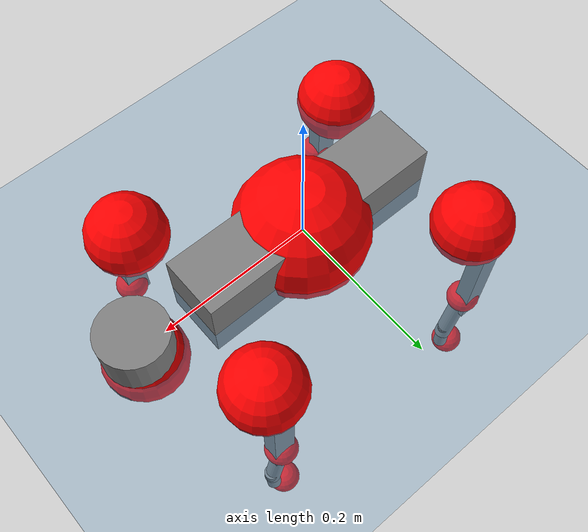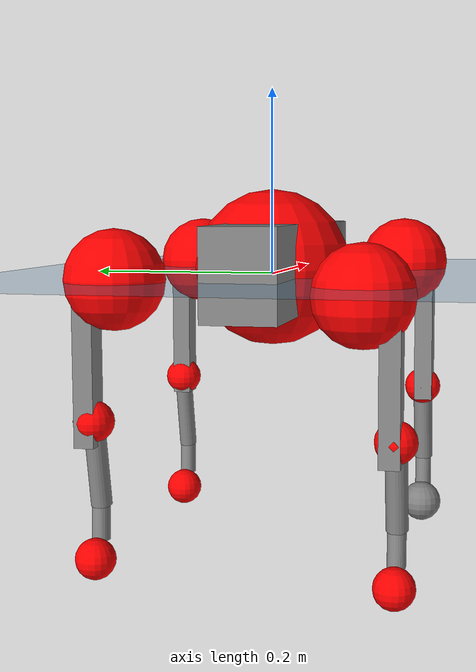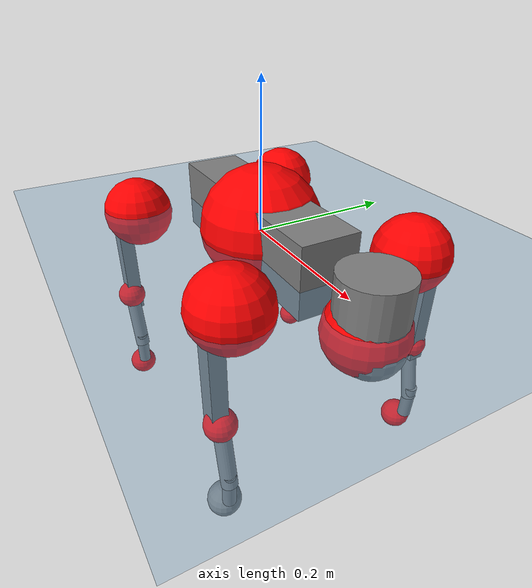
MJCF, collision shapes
<mujoco model="go2">
  <compiler angle="radian" assetdir="assets" balanceinertia="true" inertiafromgeom="false"/>

  <option timestep="0.005" density="1.2" viscosity="2e-05"/>

  <size nkey="1"/>

  <visual>
    <quality shadowsize="8192"/>
    <map shadowclip="0.5"/>
  </visual>

  <default>
    <default class="/">
      <geom contype="0" conaffinity="0" group="1" solref="-1000 -80"/>
      <site size="0.01 0.005 0.005" group="5"/>
      <general forcelimited="true" biastype="affine" gainprm="20" biasprm="0 -20 -0.5"/>
      <default class="go2">
        <joint armature="0.01" damping="0.01" frictionloss="0.2"/>
        <geom condim="1" margin="0.001"/>
        <default class="visual">
          <geom type="mesh" group="2"/>
        </default>
        <default class="collision">
          <geom group="3"/>
          <default class="foot">
            <geom size="0.022 0 0" condim="6" priority="1" friction="0.8 0.02 0.01" solimp="0.015 1 0.022"/>
          </default>
        </default>
        <default class="reward_collision_sphere">
          <geom group="5" rgba="1 0 0 1"/>
        </default>
      </default>
    </default>
  </default>

  <asset>
    <texture type="skybox" colorspace="auto" name="//unnamed_texture_0" builtin="gradient" rgb1="0.95 0.95 0.95" rgb2="0.95 0.95 0.95" width="100" height="600"/>
    <texture type="2d" colorspace="auto" name="texplane" builtin="checker" rgb1="0.345 0.575 0.748" rgb2="0.345 0.575 0.748" markrgb="1 1 1" width="512" height="512"/>
    <material name="MatPlane" class="/" texture="texplane" texuniform="true" texrepeat="2 2" specular="0.9"/>
    <material name="metal" class="/" rgba="0.9 0.95 0.95 1"/>
    <material name="black" class="/" rgba="0 0 0 1"/>
    <material name="white" class="/"/>
    <material name="gray" class="/" rgba="0.671705 0.692426 0.77427 1"/>
    <mesh name="base_0" class="/" file="base_0.obj"/>
    <mesh name="base_1" class="/" file="base_1.obj"/>
    <mesh name="base_2" class="/" file="base_2.obj"/>
    <mesh name="base_3" class="/" file="base_3.obj"/>
    <mesh name="base_4" class="/" file="base_4.obj"/>
    <mesh name="hip_0" class="/" file="hip_0.obj"/>
    <mesh name="hip_1" class="/" file="hip_1.obj"/>
    <mesh name="thigh_0" class="/" file="thigh_0.obj"/>
    <mesh name="thigh_1" class="/" file="thigh_1.obj"/>
    <mesh name="thigh_mirror_0" class="/" file="thigh_mirror_0.obj"/>
    <mesh name="thigh_mirror_1" class="/" file="thigh_mirror_1.obj"/>
    <mesh name="calf_0" class="/" file="calf_0.obj"/>
    <mesh name="calf_1" class="/" file="calf_1.obj"/>
    <mesh name="calf_mirror_0" class="/" file="calf_mirror_0.obj"/>
    <mesh name="calf_mirror_1" class="/" file="calf_mirror_1.obj"/>
    <mesh name="foot" class="/" file="foot.obj"/>
  </asset>

  <worldbody>
    <geom name="floor" class="/" size="100 100 0.125" type="plane" group="0" material="MatPlane"/>
    <light name="toplight_shadow" class="/" pos="0 0 5" dir="0.0990148 0.0990148 -0.990148" type="directional" ambient="0.04 0.04 0.04" diffuse="0.55 0.55 0.55" specular="0.12 0.12 0.12"/>
    <light name="toplight_fill" class="/" pos="0 0 5" dir="0.0990148 0.0990148 -0.990148" type="directional" castshadow="false" ambient="0.04 0.04 0.04" diffuse="0.3 0.3 0.3" specular="0.08 0.08 0.08"/>
    <body name="trunk" childclass="go2" pos="0.00226285 -0.000153597 0.00712633" quat="0.999995 -0.000477487 -0.00293357 0.000786864">
      <inertial pos="0.0202377 -0.00439335 -0.00405876" quat="-0.0156112 0.717213 0.022275 0.696323" mass="3.94645" diaginertia="0.0348373 0.111532 0.00298008"/>
      <joint name="//unnamed_joint_0" type="free" armature="0" damping="0" frictionloss="0"/>
      <geom name="//unnamed_geom_1" class="visual" material="black" mesh="base_0"/>
      <geom name="//unnamed_geom_2" class="visual" material="black" mesh="base_1"/>
      <geom name="//unnamed_geom_3" class="visual" material="black" mesh="base_2"/>
      <geom name="//unnamed_geom_4" class="visual" material="white" mesh="base_3"/>
      <geom name="//unnamed_geom_5" class="visual" material="gray" mesh="base_4"/>
      <geom name="trunk_1" class="collision" size="0.159273 0.0395853 0.0482644" type="box"/>
      <geom name="trunk_2" class="collision" size="0.0423372 0.0381035" pos="0.233756 0 0.00667389" type="cylinder"/>
      <geom name="trunk_3" class="collision" size="0.039797" pos="0.240318 0 -0.0400433"/>
      <geom name="//unnamed_geom_9" class="reward_collision_sphere" size="0.0846744"/>
      <geom name="//unnamed_geom_10" class="reward_collision_sphere" size="0.0508046" pos="0.229655 0 -0.0300325"/>
      <site name="imu" pos="-0.0105905 -0.00800501 0.0476053" size="0.00846744"/>
      <camera name="track" pos="0 -2.10529 0" quat="0.707107 0.707107 0 0" mode="trackcom"/>
      <camera name="ego_camera" pos="0.255902 0 0.0300325" quat="-0.5 -0.5 0.5 0.5"/>
      <body name="FL_hip" pos="0.158809 0.0501796 -0.00131029" quat="1 -0.00015313 -0.000641566 0.00058451">
        <inertial pos="0.00121134 0.00347167 0.00696929" quat="0.517164 0.512061 0.492667 0.47709" mass="0.422362" diaginertia="0.000320303 0.000771062 6.45105e-05"/>
        <joint name="FL_hip_joint" pos="0 0 0" axis="0.999604 0.00737228 -0.027142" stiffness="0.0179665" range="-1.04588 1.02587" armature="0.00857353" damping="0.0241875" frictionloss="0.160682"/>
        <geom name="//unnamed_geom_11" class="visual" material="metal" mesh="hip_0"/>
        <geom name="//unnamed_geom_12" class="visual" material="gray" mesh="hip_1"/>
        <geom name="//unnamed_geom_13" class="collision" size="0.0389502 0.0169349" pos="0 0.0842117 0" quat="0.707107 0.707107 0 0" type="cylinder"/>
        <geom name="//unnamed_geom_14" class="reward_collision_sphere" size="0.0508046" pos="0 0.0736852 0"/>
        <body name="FL_thigh" pos="0.00424652 0.100594 -0.0051742" quat="1 -7.55612e-05 0.00017939 8.10815e-05">
          <inertial pos="-0.00236489 -0.0227448 -0.0235896" quat="0.830256 0.0833653 -0.0148904 0.550912" mass="0.760789" diaginertia="0.00240772 0.00803306 0.000130295"/>
          <joint name="FL_thigh_joint" pos="0 0 0" axis="0.00531292 0.999986 -0.000844627" stiffness="0.0101412" range="-1.54417 3.47405" armature="0.00966414" damping="0" frictionloss="0.169937"/>
          <geom name="//unnamed_geom_15" class="visual" material="metal" mesh="thigh_0"/>
          <geom name="//unnamed_geom_16" class="visual" material="gray" mesh="thigh_1"/>
          <geom name="//unnamed_geom_17" class="collision" size="0.0901782 0.0103726 0.0143946" pos="0 0 -0.0710769" quat="0.707107 0 0.707107 0" type="box"/>
          <body name="FL_calf" pos="-0.0016462 0.000902046 -0.142478" quat="1 0.000211751 -1.40199e-05 -0.000213436">
            <inertial pos="0.0133785 0.00583637 -0.0956302" quat="0.708644 -0.000528118 0.0031007 0.705559" mass="0.144244" diaginertia="0.000583239 0.00190862 6.91557e-06"/>
            <joint name="FL_calf_joint" pos="0 0 0" axis="-0.000376674 1 0.000207753" stiffness="0.0108043" range="-2.56275 -0.869574" armature="0.00800062" damping="0" frictionloss="0.105785"/>
            <geom name="//unnamed_geom_18" class="visual" material="gray" mesh="calf_0"/>
            <geom name="//unnamed_geom_19" class="visual" material="black" mesh="calf_1"/>
            <geom name="FL_calf0" class="collision" size="0.0101609 0.0508046" pos="0.00656158 0 -0.0400433" quat="0.994493 0 -0.104807 0" type="cylinder"/>
            <geom name="//unnamed_geom_21" class="collision" size="0.00931418 0.0275192" pos="0.0164039 0 -0.0987736" quat="0.999688 0 0.0249974 0" type="cylinder"/>
            <geom name="//unnamed_geom_22" class="visual" pos="0 0 -0.142154" quat="1 0 0 0" material="black" mesh="foot"/>
            <geom name="FL_foot" class="foot" size="0.0197097" pos="-0.00164039 0 -0.142154"/>
            <geom name="//unnamed_geom_24" class="reward_collision_sphere" size="0.0211686"/>
            <geom name="//unnamed_geom_25" class="reward_collision_sphere" size="0.0211686" pos="-0.00164039 0 -0.142154"/>
            <site name="FL_foot" class="foot" pos="-0.00164039 0 -0.142154" size="0.00846744"/>
          </body>
        </body>
      </body>
      <body name="FR_hip" pos="0.160289 -0.0521809 -0.000672203" quat="0.999993 -0.000503592 0.00144961 -0.00343233">
        <inertial pos="-0.00452895 -0.00110671 -6.64007e-05" quat="0.520403 0.494214 0.511243 0.472825" mass="0.36843" diaginertia="0.000332073 0.00075 6.43963e-05"/>
        <joint name="FR_hip_joint" pos="0 0 0" axis="0.99998 -0.00480119 -0.00419421" stiffness="0.0262436" range="-0.907504 1.06828" armature="0.00909055" damping="0.0188802" frictionloss="0.150038"/>
        <geom name="//unnamed_geom_26" class="visual" pos="0 3.3562e-09 1.43954e-07" quat="4.63268e-05 1 0 0" material="metal" mesh="hip_0"/>
        <geom name="//unnamed_geom_27" class="visual" pos="0 5.4408e-09 -3.56054e-07" quat="4.63268e-05 1 0 0" material="gray" mesh="hip_1"/>
        <geom name="//unnamed_geom_28" class="collision" size="0.0389502 0.0169349" pos="0 -0.0842117 0" quat="0.707107 0.707107 0 0" type="cylinder"/>
        <geom name="//unnamed_geom_29" class="reward_collision_sphere" size="0.0508046" pos="0 -0.0736852 0"/>
        <body name="FR_thigh" pos="0.00263165 -0.0984972 -0.00466554" quat="1 -2.56315e-05 -3.12147e-05 7.2307e-05">
          <inertial pos="-0.00175924 0.0250227 -0.0231913" quat="0.555941 -0.0221588 0.0887036 0.826178" mass="0.672575" diaginertia="0.00226867 0.00801816 0.000117175"/>
          <joint name="FR_thigh_joint" pos="0 0 0" axis="0.00401992 -0.99999 0.00194627" range="-3.48315 1.59891" armature="0.00853576" damping="0.0465551" frictionloss="0.203214"/>
          <geom name="//unnamed_geom_30" class="visual" material="metal" mesh="thigh_mirror_0"/>
          <geom name="//unnamed_geom_31" class="visual" material="gray" mesh="thigh_mirror_1"/>
          <geom name="//unnamed_geom_32" class="collision" size="0.0901782 0.0103726 0.0143946" pos="0 0 -0.0710769" quat="0.707107 0 0.707107 0" type="box"/>
          <body name="FR_calf" pos="0.00672087 0.00214498 -0.14738" quat="1 7.50753e-05 0.000931012 -0.000110276">
            <inertial pos="0.0035342 0.00648893 -0.0985877" quat="0.679804 0.00836585 -0.0155908 0.73318" mass="0.153049" diaginertia="0.000580052 0.00189953 7.76078e-06"/>
            <joint name="FR_calf_joint" pos="0 0 0" axis="0.00186582 -0.999995 0.00244822" range="0.816726 2.68679" armature="0.00873527" damping="0.0221639" frictionloss="0.1748"/>
            <geom name="//unnamed_geom_33" class="visual" material="gray" mesh="calf_mirror_0"/>
            <geom name="//unnamed_geom_34" class="visual" material="black" mesh="calf_mirror_1"/>
            <geom name="FR_calf0" class="collision" size="0.0110077 0.0508046" pos="0.00820197 0 -0.0400433" quat="0.995004 0 -0.0998334 0" type="cylinder"/>
            <geom name="//unnamed_geom_36" class="collision" size="0.00931418 0.0275192" pos="0.0164039 0 -0.0987736" quat="0.999688 0 0.0249974 0" type="cylinder"/>
            <geom name="//unnamed_geom_37" class="visual" pos="0 0 -0.142154" quat="1 0 0 0" material="black" mesh="foot"/>
            <geom name="FR_foot" class="foot" size="0.0231667" pos="-0.00164039 0 -0.142154"/>
            <geom name="//unnamed_geom_39" class="reward_collision_sphere" size="0.0211686"/>
            <geom name="//unnamed_geom_40" class="reward_collision_sphere" size="0.0211686" pos="-0.00164039 0 -0.142154"/>
            <site name="FR_foot" class="foot" pos="-0.00164039 0 -0.142154" size="0.00846744"/>
          </body>
        </body>
      </body>
      <body name="RL_hip" pos="-0.158779 0.0514046 -0.00451398" quat="1 -0.000307524 0.00015308 -0.000134485">
        <inertial pos="0.00336546 0.00768227 0.00706854" quat="0.506224 0.497886 0.495723 0.500106" mass="0.407858" diaginertia="0.000336895 0.000787897 6.78078e-05"/>
        <joint name="RL_hip_joint" pos="0 0 0" axis="-0.999677 0.0253826 0.0014109" stiffness="0.0110781" range="-0.944463 0.928301" armature="0.00639057" damping="0" frictionloss="0.174568"/>
        <geom name="//unnamed_geom_41" class="visual" pos="-1.3312e-09 0 -2.60946e-07" quat="4.63268e-05 0 1 0" material="metal" mesh="hip_0"/>
        <geom name="//unnamed_geom_42" class="visual" pos="-2.15804e-09 0 -2.31422e-07" quat="4.63268e-05 0 1 0" material="gray" mesh="hip_1"/>
        <geom name="//unnamed_geom_43" class="collision" size="0.0389502 0.0169349" pos="0 0.0842117 0" quat="0.707107 0.707107 0 0" type="cylinder"/>
        <geom name="//unnamed_geom_44" class="reward_collision_sphere" size="0.0508046" pos="0 0.0736852 0"/>
        <body name="RL_thigh" pos="0.00334224 0.105337 -0.00797573" quat="0.999999 -0.000184524 -0.00159323 -0.000250973">
          <inertial pos="-0.0108902 -0.0201826 -0.0141437" quat="0.82963 0.0849933 -0.019904 0.551447" mass="0.613152" diaginertia="0.0018256 0.006954 0.000100647"/>
          <joint name="RL_thigh_joint" pos="0 0 0" axis="-0.00888221 0.999078 -0.0420132" range="-0.478505 4.56527" armature="0.0087467" damping="0.0471322" frictionloss="0.167192"/>
          <geom name="//unnamed_geom_45" class="visual" material="metal" mesh="thigh_0"/>
          <geom name="//unnamed_geom_46" class="visual" material="gray" mesh="thigh_1"/>
          <geom name="//unnamed_geom_47" class="collision" size="0.0901782 0.0103726 0.0143946" pos="0 0 -0.0710769" quat="0.707107 0 0.707107 0" type="box"/>
          <body name="RL_calf" pos="0.00315742 -0.00468434 -0.136444" quat="0.999998 -0.000213525 0.00164204 0.00105441">
            <inertial pos="0.0119463 -0.0034213 -0.0869476" quat="0.721537 0.00057505 -0.0281698 0.691803" mass="0.155376" diaginertia="0.000568859 0.00198499 7.30294e-06"/>
            <joint name="RL_calf_joint" pos="0 0 0" axis="0.00270539 0.999896 -0.0141369" range="-2.68321 -0.673347" armature="0.00601444" damping="0.0427024" frictionloss="0.174788"/>
            <geom name="//unnamed_geom_48" class="visual" material="gray" mesh="calf_0"/>
            <geom name="//unnamed_geom_49" class="visual" material="black" mesh="calf_1"/>
            <geom name="RL_calf0" class="collision" size="0.0110077 0.0508046" pos="0.00820197 0 -0.0400433" quat="0.995004 0 -0.0998334 0" type="cylinder"/>
            <geom name="//unnamed_geom_51" class="collision" size="0.00931418 0.0275192" pos="0.0164039 0 -0.0987736" quat="0.999688 0 0.0249974 0" type="cylinder"/>
            <geom name="//unnamed_geom_52" class="visual" pos="0 0 -0.142154" quat="1 0 0 0" material="black" mesh="foot"/>
            <geom name="RL_foot" class="foot" size="0.019471" pos="-0.00164039 0 -0.142154"/>
            <geom name="//unnamed_geom_54" class="reward_collision_sphere" size="0.0211686"/>
            <geom name="//unnamed_geom_55" class="reward_collision_sphere" size="0.0211686" pos="-0.00164039 0 -0.142154"/>
            <site name="RL_foot" class="foot" pos="-0.00164039 0 -0.142154" size="0.00846744"/>
          </body>
        </body>
      </body>
      <body name="RR_hip" pos="-0.166659 -0.0502424 -0.0160067" quat="1 0.000164819 0.000279118 -0.0003834">
        <inertial pos="0.0086556 -5.99645e-05 -0.00136413" quat="0.498641 0.474738 0.517337 0.508276" mass="0.413895" diaginertia="0.000274821 0.000710439 5.71133e-05"/>
        <joint name="RR_hip_joint" pos="0 0 0" axis="-0.999168 0.0405313 0.0044318" stiffness="0.00451196" range="-1.03906 1.04595" armature="0.00861657" damping="0.00820021" frictionloss="0.101905"/>
        <geom name="//unnamed_geom_56" class="visual" pos="1.33925e-09 3.3562e-09 -4.04901e-07" quat="2.14617e-09 4.63268e-05 4.63268e-05 -1" material="metal" mesh="hip_0"/>
        <geom name="//unnamed_geom_57" class="visual" pos="2.13813e-09 5.4408e-09 1.24632e-07" quat="2.14617e-09 4.63268e-05 4.63268e-05 -1" material="gray" mesh="hip_1"/>
        <geom name="//unnamed_geom_58" class="collision" size="0.0389502 0.0169349" pos="0 -0.0842117 0" quat="0.707107 0.707107 0 0" type="cylinder"/>
        <geom name="//unnamed_geom_59" class="reward_collision_sphere" size="0.0508046" pos="0 -0.0736852 0"/>
        <body name="RR_thigh" pos="-0.00326428 -0.100939 -0.000283713" quat="0.999999 -0.000193361 -0.00150462 0.000703363">
          <inertial pos="-0.00465576 0.0243361 -0.0150865" quat="0.556579 -0.0306033 0.0857021 0.825796" mass="0.755594" diaginertia="0.00204161 0.0074094 0.000117253"/>
          <joint name="RR_thigh_joint" pos="0 0 0" axis="0.000206701 -0.999999 -0.0012722" stiffness="0.00856163" range="-4.5426 0.598944" armature="0.00853587" damping="0.000426888" frictionloss="0.15618"/>
          <geom name="//unnamed_geom_60" class="visual" material="metal" mesh="thigh_mirror_0"/>
          <geom name="//unnamed_geom_61" class="visual" material="gray" mesh="thigh_mirror_1"/>
          <geom name="//unnamed_geom_62" class="collision" size="0.0901782 0.0103726 0.0143946" pos="0 0 -0.0710769" quat="0.707107 0 0.707107 0" type="box"/>
          <body name="RR_calf" pos="0.00598994 -0.00428568 -0.138443" quat="0.999991 0.0024783 -0.00221791 0.00244367">
            <inertial pos="0.00598163 0.00178932 -0.0959012" quat="0.719553 -0.0226406 0.000998926 0.694067" mass="0.139456" diaginertia="0.000525442 0.00182426 7.40668e-06"/>
            <joint name="RR_calf_joint" pos="0 0 0" axis="-0.0260336 -0.999302 0.0267859" stiffness="0.0312805" range="0.736182 2.68785" armature="0.00851349" damping="0.0360987" frictionloss="0.156761"/>
            <geom name="//unnamed_geom_63" class="visual" material="gray" mesh="calf_mirror_0"/>
            <geom name="//unnamed_geom_64" class="visual" material="black" mesh="calf_mirror_1"/>
            <geom name="RR_calf0" class="collision" size="0.0110077 0.0508046" pos="0.00820197 0 -0.0400433" quat="0.995004 0 -0.0998334 0" type="cylinder"/>
            <geom name="//unnamed_geom_66" class="collision" size="0.00931418 0.0275192" pos="0.0164039 0 -0.0987736" quat="0.999688 0 0.0249974 0" type="cylinder"/>
            <geom name="//unnamed_geom_67" class="visual" pos="0 0 -0.142154" quat="1 0 0 0" material="black" mesh="foot"/>
            <geom name="RR_foot" class="foot" size="0.0181563" pos="-0.00164039 0 -0.142154"/>
            <geom name="//unnamed_geom_69" class="reward_collision_sphere" size="0.0211686"/>
            <geom name="//unnamed_geom_70" class="reward_collision_sphere" size="0.0211686" pos="-0.00164039 0 -0.142154"/>
            <site name="RR_foot" class="foot" pos="-0.00164039 0 -0.142154" size="0.00846744"/>
          </body>
        </body>
      </body>
    </body>
  </worldbody>

  <contact>
    <pair class="/" geom1="floor" geom2="FL_foot" name="//unnamed_contact_0"/>
    <pair class="/" geom1="floor" geom2="FR_foot" name="//unnamed_contact_1"/>
    <pair class="/" geom1="floor" geom2="RL_foot" name="//unnamed_contact_2"/>
    <pair class="/" geom1="floor" geom2="RR_foot" name="//unnamed_contact_3"/>
  </contact>

  <actuator>
    <general name="FL_hip" class="/" joint="FL_hip_joint" forcerange="-19.108 19.108" gainprm="17.8643" biasprm="0 -17.8643 -0.406006"/>
    <general name="FL_thigh" class="/" joint="FL_thigh_joint" forcerange="-21.6552 21.6552" gainprm="17.8643" biasprm="0 -17.8643 -0.406006"/>
    <general name="FL_calf" class="/" joint="FL_calf_joint" forcerange="-36.4748 36.4748" gainprm="17.8643" biasprm="0 -17.8643 -0.406006"/>
    <general name="FR_hip" class="/" joint="FR_hip_joint" forcerange="-18.3369 18.3369" gainprm="17.8643" biasprm="0 -17.8643 -0.406006"/>
    <general name="FR_thigh" class="/" joint="FR_thigh_joint" forcerange="-19.1761 19.1761" gainprm="17.8643" biasprm="0 -17.8643 -0.406006"/>
    <general name="FR_calf" class="/" joint="FR_calf_joint" forcerange="-38.6347 38.6347" gainprm="17.8643" biasprm="0 -17.8643 -0.406006"/>
    <general name="RL_hip" class="/" joint="RL_hip_joint" forcerange="-19.6595 19.6595" gainprm="17.8643" biasprm="0 -17.8643 -0.406006"/>
    <general name="RL_thigh" class="/" joint="RL_thigh_joint" forcerange="-25.3402 25.3402" gainprm="17.8643" biasprm="0 -17.8643 -0.406006"/>
    <general name="RL_calf" class="/" joint="RL_calf_joint" forcerange="-30.3962 30.3962" gainprm="17.8643" biasprm="0 -17.8643 -0.406006"/>
    <general name="RR_hip" class="/" joint="RR_hip_joint" forcerange="-19.775 19.775" gainprm="17.8643" biasprm="0 -17.8643 -0.406006"/>
    <general name="RR_thigh" class="/" joint="RR_thigh_joint" forcerange="-19.4741 19.4741" gainprm="17.8643" biasprm="0 -17.8643 -0.406006"/>
    <general name="RR_calf" class="/" joint="RR_calf_joint" forcerange="-35.9497 35.9497" gainprm="17.8643" biasprm="0 -17.8643 -0.406006"/>
  </actuator>

  <sensor>
    <gyro site="imu" name="imu_angular_velocity"/>
    <velocimeter site="imu" name="imu_linear_velocity"/>
    <framelinvel objtype="site" objname="FL_foot" name="FL_foot_global_linear_velocity"/>
    <framelinvel objtype="site" objname="FR_foot" name="FR_foot_global_linear_velocity"/>
    <framelinvel objtype="site" objname="RL_foot" name="RL_foot_global_linear_velocity"/>
    <framelinvel objtype="site" objname="RR_foot" name="RR_foot_global_linear_velocity"/>
  </sensor>

  <keyframe>
    <key name="home" qpos="0 0 0.325 1 0 0 0 0.1 0.8 -1.5 -0.1 -0.8 1.5 -0.1 0.8 -1.5 0.1 -0.8 1.5"/>
  </keyframe>
</mujoco>
